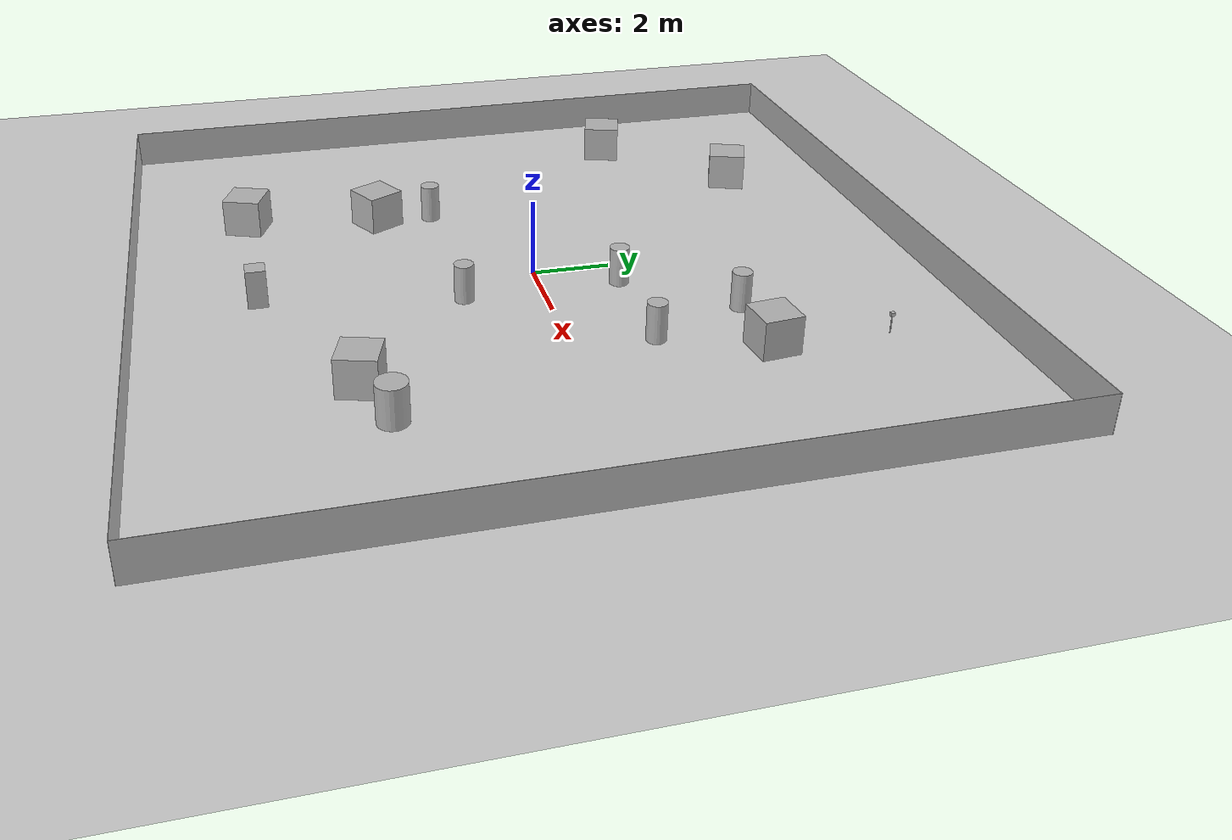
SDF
<sdf version='1.10'>
  <world name='default'>
    <physics type='ode'>
      <max_step_size>0.004</max_step_size>
      <real_time_factor>1.0</real_time_factor>
      <real_time_update_rate>250</real_time_update_rate>
    </physics>
    <plugin name='gz::sim::systems::Physics' filename='gz-sim-physics-system'/>
    <plugin name='gz::sim::systems::UserCommands' filename='gz-sim-user-commands-system'>
      <set_all_light_entities>true</set_all_light_entities>
    </plugin>
    <plugin name='gz::sim::systems::SceneBroadcaster' filename='gz-sim-scene-broadcaster-system'/>
    <plugin name='gz::sim::systems::Contact' filename='gz-sim-contact-system'/>
    <plugin name='gz::sim::systems::Imu' filename='gz-sim-imu-system'/>
    <plugin name='gz::sim::systems::Magnetometer' filename='gz-sim-magnetometer-system'/>
    <plugin name='gz::sim::systems::Altimeter' filename='gz-sim-altimeter-system'/>
    <plugin name='gz::sim::systems::NavSat' filename='gz-sim-navsat-system'/>
    <plugin name='gz::sim::systems::Sensors' filename='gz-sim-sensors-system'>
      <render_engine>ogre2</render_engine>
    </plugin>
    <plugin
      filename="gz-sim-logical-camera-system"
      name="gz::sim::systems::LogicalCamera">
      <render_engine>ogre2</render_engine>
    </plugin>
    <gui fullscreen='false'>
      <plugin name='3D View' filename='GzScene3D'>
        <gz-gui>
          <title>3D View</title>
          <property type='bool' key='showTitleBar'>0</property>
          <property type='string' key='state'>docked</property>
        </gz-gui>
        <engine>ogre2</engine>
        <scene>scene</scene>
        <ambient_light>0.5984631152222222 0.5984631152222222 0.5984631152222222</ambient_light>
        <background_color>0.8984631152222222 0.8984631152222222 0.8984631152222222</background_color>
        <camera_pose>-6 0 6 0 0.5 0</camera_pose>
      </plugin>
      <plugin name='World control' filename='WorldControl'>
        <gz-gui>
          <title>World control</title>
          <property type='bool' key='showTitleBar'>0</property>
          <property type='bool' key='resizable'>0</property>
          <property type='double' key='height'>72</property>
          <property type='double' key='width'>121</property>
          <property type='double' key='z'>1</property>
          <property type='string' key='state'>floating</property>
          <anchors target='3D View'>
            <line own='left' target='left'/>
            <line own='bottom' target='bottom'/>
          </anchors>
        </gz-gui>
        <play_pause>1</play_pause>
        <step>1</step>
        <start_paused>1</start_paused>
      </plugin>
      <plugin name='World stats' filename='WorldStats'>
        <gz-gui>
          <title>World stats</title>
          <property type='bool' key='showTitleBar'>0</property>
          <property type='bool' key='resizable'>0</property>
          <property type='double' key='height'>110</property>
          <property type='double' key='width'>290</property>
          <property type='double' key='z'>1</property>
          <property type='string' key='state'>floating</property>
          <anchors target='3D View'>
            <line own='right' target='right'/>
            <line own='bottom' target='bottom'/>
          </anchors>
        </gz-gui>
        <sim_time>1</sim_time>
        <real_time>1</real_time>
        <real_time_factor>1</real_time_factor>
        <iterations>1</iterations>
      </plugin>
    </gui>
    <gravity>0 0 -9.8000000000000007</gravity>
    <magnetic_field>6.0000000000000002e-06 2.3e-05 -4.1999999999999998e-05</magnetic_field>
    <atmosphere type='adiabatic'/>
    <spherical_coordinates>
      <surface_model>EARTH_WGS84</surface_model>
      <latitude_deg>39.79480109851339</latitude_deg>
      <longitude_deg>-84.08631702793322</longitude_deg>
      <elevation>265.2</elevation>
      <heading_deg>0</heading_deg>
    </spherical_coordinates>
    <scene>
      <grid>true</grid>
      <ambient>0.400000006 0.400000006 0.400000006 1</ambient>
      <background>0.699999988 0.699999988 0.699999988 1</background>
      <shadows>false</shadows>
    </scene>
    <model name='ground_plane'>
      <static>true</static>
      <link name='link'>
        <collision name='collision'>
          <geometry>
            <plane>
              <normal>0 0 1</normal>
              <size>1 1</size>
            </plane>
          </geometry>
          <surface>
            <friction>
              <ode/>
            </friction>
            <bounce/>
            <contact/>
          </surface>
        </collision>
        <visual name='visual'>
          <geometry>
            <plane>
              <normal>0 0 1</normal>
              <size>100 100</size>
            </plane>
          </geometry>
          <material>
            <ambient>0.800000012 0.800000012 0.800000012 1</ambient>
            <diffuse>0.800000012 0.800000012 0.800000012 1</diffuse>
            <specular>0.800000012 0.800000012 0.800000012 1</specular>
          </material>
        </visual>
        <pose>0 0 0 0 0 0</pose>
        <inertial>
          <pose>0 0 0 0 0 0</pose>
          <mass>1</mass>
          <inertia>
            <ixx>1</ixx>
            <ixy>0</ixy>
            <ixz>0</ixz>
            <iyy>1</iyy>
            <iyz>0</iyz>
            <izz>1</izz>
          </inertia>
        </inertial>
        <enable_wind>false</enable_wind>
      </link>
      <pose>0 0 0 0 0 0</pose>
      <self_collide>false</self_collide>
    </model>
    <model name='wall_1'>
      <pose>-10 0 .5 0 0 -1.57</pose>
      <static>true</static>
      <link name='link'>
        <collision name='collision'>
          <geometry>
            <box>
              <size>20 .01 1</size>
            </box>
          </geometry>
        </collision>
        <visual name='visual'>
          <geometry>
            <box>
              <size>20 .01 1</size>
            </box>
          </geometry>
          <material>
            <ambient>0.7 0.7 0.7 1</ambient>
            <diffuse>0.7 0.7 0.7 1</diffuse>
            <specular>0.7 0.7 0.7 1</specular>
          </material>
        </visual>
        <inertial>
          <pose>0 0 0 0 0 0</pose>
          <mass>1</mass>
          <inertia>
            <ixx>1</ixx>
            <ixy>0</ixy>
            <ixz>0</ixz>
            <iyy>1</iyy>
            <iyz>0</iyz>
            <izz>1</izz>
          </inertia>
        </inertial>
        <enable_wind>false</enable_wind>
      </link>
      <self_collide>false</self_collide>
    </model>
    <model name='wall_2'>
      <pose>10 0 .5 0 0 -1.57</pose>
      <static>true</static>
      <link name='link'>
        <collision name='collision'>
          <geometry>
            <box>
              <size>20 .01 1</size>
            </box>
          </geometry>
        </collision>
        <visual name='visual'>
          <geometry>
            <box>
              <size>20 .01 1</size>
            </box>
          </geometry>
          <material>
            <ambient>0.7 0.7 0.7 1</ambient>
            <diffuse>0.7 0.7 0.7 1</diffuse>
            <specular>0.7 0.7 0.7 1</specular>
          </material>
        </visual>
        <inertial>
          <pose>0 0 0 0 0 0</pose>
          <mass>1</mass>
          <inertia>
            <ixx>1</ixx>
            <ixy>0</ixy>
            <ixz>0</ixz>
            <iyy>1</iyy>
            <iyz>0</iyz>
            <izz>1</izz>
          </inertia>
        </inertial>
        <enable_wind>false</enable_wind>
      </link>
      <self_collide>false</self_collide>
    </model>
    <model name='wall_3'>
      <pose>0 10 .5 0 0 0</pose>
      <static>true</static>
      <link name='link'>
        <collision name='collision'>
          <geometry>
            <box>
              <size>20 .01 1</size>
            </box>
          </geometry>
        </collision>
        <visual name='visual'>
          <geometry>
            <box>
              <size>20 .01 1</size>
            </box>
          </geometry>
          <material>
            <ambient>0.7 0.7 0.7 1</ambient>
            <diffuse>0.7 0.7 0.7 1</diffuse>
            <specular>0.7 0.7 0.7 1</specular>
          </material>
        </visual>
        <inertial>
          <pose>0 0 0 0 0 0</pose>
          <mass>1</mass>
          <inertia>
            <ixx>1</ixx>
            <ixy>0</ixy>
            <ixz>0</ixz>
            <iyy>1</iyy>
            <iyz>0</iyz>
            <izz>1</izz>
          </inertia>
        </inertial>
        <enable_wind>false</enable_wind>
      </link>
      <self_collide>false</self_collide>
    </model>
    <model name='wall_4'>
      <pose>0 -10 .5 0 0 0</pose>
      <static>true</static>
      <link name='link'>
        <collision name='collision'>
          <geometry>
            <box>
              <size>20 .01 1</size>
            </box>
          </geometry>
        </collision>
        <visual name='visual'>
          <geometry>
            <box>
              <size>20 .01 1</size>
            </box>
          </geometry>
          <material>
            <ambient>0.7 0.7 0.7 1</ambient>
            <diffuse>0.7 0.7 0.7 1</diffuse>
            <specular>0.7 0.7 0.7 1</specular>
          </material>
        </visual>
        <inertial>
          <pose>0 0 0 0 0 0</pose>
          <mass>1</mass>
          <inertia>
            <ixx>1</ixx>
            <ixy>0</ixy>
            <ixz>0</ixz>
            <iyy>1</iyy>
            <iyz>0</iyz>
            <izz>1</izz>
          </inertia>
        </inertial>
        <enable_wind>false</enable_wind>
      </link>
      <self_collide>false</self_collide>
    </model>
    <model name='cube_1'>
      <pose>-4 -3.5 .5 0 0 .5</pose>
      <static>true</static>
      <link name='link'>
        <collision name='collision'>
          <geometry>
            <box>
              <size>1 1 1</size>
            </box>
          </geometry>
        </collision>
        <visual name='visual'>
          <geometry>
            <box>
              <size>1 1 1</size>
            </box>
          </geometry>
          <material>
            <ambient>0.7 0.7 0.7 1</ambient>
            <diffuse>0.7 0.7 0.7 1</diffuse>
            <specular>0.7 0.7 0.7 1</specular>
          </material>
        </visual>
        <inertial>
          <pose>0 0 0 0 0 0</pose>
          <mass>1</mass>
          <inertia>
            <ixx>1</ixx>
            <ixy>0</ixy>
            <ixz>0</ixz>
            <iyy>1</iyy>
            <iyz>0</iyz>
            <izz>1</izz>
          </inertia>
        </inertial>
        <enable_wind>false</enable_wind>
      </link>
      <self_collide>false</self_collide>
    </model>
    <model name='cube_2'>
      <pose>0 -7 .5 0 0 0</pose>
      <static>true</static>
      <link name='link'>
        <collision name='collision'>
          <geometry>
            <box>
              <size>.5 .5 1</size>
            </box>
          </geometry>
        </collision>
        <visual name='visual'>
          <geometry>
            <box>
              <size>.5 .5 1</size>
            </box>
          </geometry>
          <material>
            <ambient>0.7 0.7 0.7 1</ambient>
            <diffuse>0.7 0.7 0.7 1</diffuse>
            <specular>0.7 0.7 0.7 1</specular>
          </material>
        </visual>
        <inertial>
          <pose>0 0 0 0 0 0</pose>
          <mass>1</mass>
          <inertia>
            <ixx>1</ixx>
            <ixy>0</ixy>
            <ixz>0</ixz>
            <iyy>1</iyy>
            <iyz>0</iyz>
            <izz>1</izz>
          </inertia>
        </inertial>
        <enable_wind>false</enable_wind>
      </link>
      <self_collide>false</self_collide>
    </model>
    <model name='cube_3'>
      <pose>5 4.5 .5 0 0 .1</pose>
      <static>true</static>
      <link name='link'>
        <collision name='collision'>
          <geometry>
            <box>
              <size>1 1 1</size>
            </box>
          </geometry>
        </collision>
        <visual name='visual'>
          <geometry>
            <box>
              <size>1 1 1</size>
            </box>
          </geometry>
          <material>
            <ambient>0.7 0.7 0.7 1</ambient>
            <diffuse>0.7 0.7 0.7 1</diffuse>
            <specular>0.7 0.7 0.7 1</specular>
          </material>
        </visual>
        <inertial>
          <pose>0 0 0 0 0 0</pose>
          <mass>1</mass>
          <inertia>
            <ixx>1</ixx>
            <ixy>0</ixy>
            <ixz>0</ixz>
            <iyy>1</iyy>
            <iyz>0</iyz>
            <izz>1</izz>
          </inertia>
        </inertial>
        <enable_wind>false</enable_wind>
      </link>
      <self_collide>false</self_collide>
    </model>

    <model name='cube_4'>
      <pose>4.5 -5.0 .5 0 0 -0.3</pose>
      <static>true</static>
      <link name='link'>
        <collision name='collision'>
          <geometry>
            <box>
              <size>1 1 1</size>
            </box>
          </geometry>
        </collision>
        <visual name='visual'>
          <geometry>
            <box>
              <size>1 1 1</size>
            </box>
          </geometry>
          <material>
            <ambient>0.7 0.7 0.7 1</ambient>
            <diffuse>0.7 0.7 0.7 1</diffuse>
            <specular>0.7 0.7 0.7 1</specular>
          </material>
        </visual>
        <inertial>
          <pose>0 0 0 0 0 0</pose>
          <mass>1</mass>
          <inertia>
            <ixx>1</ixx>
            <ixy>0</ixy>
            <ixz>0</ixz>
            <iyy>1</iyy>
            <iyz>0</iyz>
            <izz>1</izz>
          </inertia>
        </inertial>
        <enable_wind>false</enable_wind>
      </link>
      <self_collide>false</self_collide>
    </model>

    <model name='cube_5'>
      <pose>-7.5 4.0 .5 0 0 -0.3</pose>
      <static>true</static>
      <link name='link'>
        <collision name='collision'>
          <geometry>
            <box>
              <size>1 1 1</size>
            </box>
          </geometry>
        </collision>
        <visual name='visual'>
          <geometry>
            <box>
              <size>1 1 1</size>
            </box>
          </geometry>
          <material>
            <ambient>0.7 0.7 0.7 1</ambient>
            <diffuse>0.7 0.7 0.7 1</diffuse>
            <specular>0.7 0.7 0.7 1</specular>
          </material>
        </visual>
        <inertial>
          <pose>0 0 0 0 0 0</pose>
          <mass>1</mass>
          <inertia>
            <ixx>1</ixx>
            <ixy>0</ixy>
            <ixz>0</ixz>
            <iyy>1</iyy>
            <iyz>0</iyz>
            <izz>1</izz>
          </inertia>
        </inertial>
        <enable_wind>false</enable_wind>
      </link>
      <self_collide>false</self_collide>
    </model>

    <model name='cube_6'>
      <pose>-4.5 7.0 .5 0 0 1.2</pose>
      <static>true</static>
      <link name='link'>
        <collision name='collision'>
          <geometry>
            <box>
              <size>1 1 1</size>
            </box>
          </geometry>
        </collision>
        <visual name='visual'>
          <geometry>
            <box>
              <size>1 1 1</size>
            </box>
          </geometry>
          <material>
            <ambient>0.7 0.7 0.7 1</ambient>
            <diffuse>0.7 0.7 0.7 1</diffuse>
            <specular>0.7 0.7 0.7 1</specular>
          </material>
        </visual>
        <inertial>
          <pose>0 0 0 0 0 0</pose>
          <mass>1</mass>
          <inertia>
            <ixx>1</ixx>
            <ixy>0</ixy>
            <ixz>0</ixz>
            <iyy>1</iyy>
            <iyz>0</iyz>
            <izz>1</izz>
          </inertia>
        </inertial>
        <enable_wind>false</enable_wind>
      </link>
      <self_collide>false</self_collide>
    </model>

    <model name='cube_7'>
      <pose>-4.5 -7.0 .5 0 0 1.2</pose>
      <static>true</static>
      <link name='link'>
        <collision name='collision'>
          <geometry>
            <box>
              <size>1 1 1</size>
            </box>
          </geometry>
        </collision>
        <visual name='visual'>
          <geometry>
            <box>
              <size>1 1 1</size>
            </box>
          </geometry>
          <material>
            <ambient>0.7 0.7 0.7 1</ambient>
            <diffuse>0.7 0.7 0.7 1</diffuse>
            <specular>0.7 0.7 0.7 1</specular>
          </material>
        </visual>
        <inertial>
          <pose>0 0 0 0 0 0</pose>
          <mass>1</mass>
          <inertia>
            <ixx>1</ixx>
            <ixy>0</ixy>
            <ixz>0</ixz>
            <iyy>1</iyy>
            <iyz>0</iyz>
            <izz>1</izz>
          </inertia>
        </inertial>
        <enable_wind>false</enable_wind>
      </link>
      <self_collide>false</self_collide>
    </model>

    <model name='cylinder_1'>
      <pose>6 -4.5 .5 0 0 0</pose>
      <static>true</static>
      <link name='link'>
        <collision name='collision'>
          <geometry>
            <cylinder>
              <length>1</length>
              <radius>.375</radius>
            </cylinder>
          </geometry>
        </collision>
        <visual name='visual'>
          <geometry>
            <cylinder>
              <length>1</length>
              <radius>.375</radius>
            </cylinder>
          </geometry>
          <material>
            <ambient>0.7 0.7 0.7 1</ambient>
            <diffuse>0.7 0.7 0.7 1</diffuse>
            <specular>0.7 0.7 0.7 1</specular>
          </material>
        </visual>
        <inertial>
          <pose>0 0 0 0 0 0</pose>
          <mass>1</mass>
          <inertia>
            <ixx>1</ixx>
            <ixy>0</ixy>
            <ixz>0</ixz>
            <iyy>1</iyy>
            <iyz>0</iyz>
            <izz>1</izz>
          </inertia>
        </inertial>
        <enable_wind>false</enable_wind>
      </link>
      <self_collide>false</self_collide>
    </model>
    <model name='cylinder_2'>
      <pose>3 4.5 .5 0 0 0</pose>
      <static>true</static>
      <link name='link'>
        <collision name='collision'>
          <geometry>
            <cylinder>
              <length>1</length>
              <radius>.25</radius>
            </cylinder>
          </geometry>
        </collision>
        <visual name='visual'>
          <geometry>
            <cylinder>
              <length>1</length>
              <radius>.25</radius>
            </cylinder>
          </geometry>
          <material>
            <ambient>0.7 0.7 0.7 1</ambient>
            <diffuse>0.7 0.7 0.7 1</diffuse>
            <specular>0.7 0.7 0.7 1</specular>
          </material>
        </visual>
        <inertial>
          <pose>0 0 0 0 0 0</pose>
          <mass>1</mass>
          <inertia>
            <ixx>1</ixx>
            <ixy>0</ixy>
            <ixz>0</ixz>
            <iyy>1</iyy>
            <iyz>0</iyz>
            <izz>1</izz>
          </inertia>
        </inertial>
        <enable_wind>false</enable_wind>
      </link>
      <self_collide>false</self_collide>
    </model>
    <model name='cylinder_3'>
      <pose>1.0 2.0 .5 0 0 0</pose>
      <static>true</static>
      <link name='link'>
        <collision name='collision'>
          <geometry>
            <cylinder>
              <length>1</length>
              <radius>.25</radius>
            </cylinder>
          </geometry>
        </collision>
        <visual name='visual'>
          <geometry>
            <cylinder>
              <length>1</length>
              <radius>.25</radius>
            </cylinder>
          </geometry>
          <material>
            <ambient>0.7 0.7 0.7 1</ambient>
            <diffuse>0.7 0.7 0.7 1</diffuse>
            <specular>0.7 0.7 0.7 1</specular>
          </material>
        </visual>
        <inertial>
          <pose>0 0 0 0 0 0</pose>
          <mass>1</mass>
          <inertia>
            <ixx>1</ixx>
            <ixy>0</ixy>
            <ixz>0</ixz>
            <iyy>1</iyy>
            <iyz>0</iyz>
            <izz>1</izz>
          </inertia>
        </inertial>
        <enable_wind>false</enable_wind>
      </link>
      <self_collide>false</self_collide>
    </model>
    <model name='cylinder_4'>
      <pose>1.0 -2.0 .5 0 0 0</pose>
      <static>true</static>
      <link name='link'>
        <collision name='collision'>
          <geometry>
            <cylinder>
              <length>1</length>
              <radius>.25</radius>
            </cylinder>
          </geometry>
        </collision>
        <visual name='visual'>
          <geometry>
            <cylinder>
              <length>1</length>
              <radius>.25</radius>
            </cylinder>
          </geometry>
          <material>
            <ambient>0.7 0.7 0.7 1</ambient>
            <diffuse>0.7 0.7 0.7 1</diffuse>
            <specular>0.7 0.7 0.7 1</specular>
          </material>
        </visual>
        <inertial>
          <pose>0 0 0 0 0 0</pose>
          <mass>1</mass>
          <inertia>
            <ixx>1</ixx>
            <ixy>0</ixy>
            <ixz>0</ixz>
            <iyy>1</iyy>
            <iyz>0</iyz>
            <izz>1</izz>
          </inertia>
        </inertial>
        <enable_wind>false</enable_wind>
      </link>
      <self_collide>false</self_collide>
    </model>
    <model name='cylinder_5'>
      <pose>-4.0 -2.0 .5 0 0 0</pose>
      <static>true</static>
      <link name='link'>
        <collision name='collision'>
          <geometry>
            <cylinder>
              <length>1</length>
              <radius>.25</radius>
            </cylinder>
          </geometry>
        </collision>
        <visual name='visual'>
          <geometry>
            <cylinder>
              <length>1</length>
              <radius>.25</radius>
            </cylinder>
          </geometry>
          <material>
            <ambient>0.7 0.7 0.7 1</ambient>
            <diffuse>0.7 0.7 0.7 1</diffuse>
            <specular>0.7 0.7 0.7 1</specular>
          </material>
        </visual>
        <inertial>
          <pose>0 0 0 0 0 0</pose>
          <mass>1</mass>
          <inertia>
            <ixx>1</ixx>
            <ixy>0</ixy>
            <ixz>0</ixz>
            <iyy>1</iyy>
            <iyz>0</iyz>
            <izz>1</izz>
          </inertia>
        </inertial>
        <enable_wind>false</enable_wind>
      </link>
      <self_collide>false</self_collide>
    </model>
    <model name='cylinder_6'>
      <pose>4.0 2.0 .5 0 0 0</pose>
      <static>true</static>
      <link name='link'>
        <collision name='collision'>
          <geometry>
            <cylinder>
              <length>1</length>
              <radius>.25</radius>
            </cylinder>
          </geometry>
        </collision>
        <visual name='visual'>
          <geometry>
            <cylinder>
              <length>1</length>
              <radius>.25</radius>
            </cylinder>
          </geometry>
          <material>
            <ambient>0.7 0.7 0.7 1</ambient>
            <diffuse>0.7 0.7 0.7 1</diffuse>
            <specular>0.7 0.7 0.7 1</specular>
          </material>
        </visual>
        <inertial>
          <pose>0 0 0 0 0 0</pose>
          <mass>1</mass>
          <inertia>
            <ixx>1</ixx>
            <ixy>0</ixy>
            <ixz>0</ixz>
            <iyy>1</iyy>
            <iyz>0</iyz>
            <izz>1</izz>
          </inertia>
        </inertial>
        <enable_wind>false</enable_wind>
      </link>
      <self_collide>false</self_collide>
    </model>
    <light name='sunUTC' type='directional'>
      <pose>0 0 500 0 0 0</pose>
      <cast_shadows>false</cast_shadows>
      <intensity>1</intensity>
      <direction>0.001 0.625 -0.78000000000000003</direction>
      <diffuse>0.903999984 0.903999984 0.903999984 1</diffuse>
      <specular>0.270999998 0.270999998 0.270999998 1</specular>
      <attenuation>
        <range>2000</range>
        <linear>0</linear>
        <constant>1</constant>
        <quadratic>0</quadratic>
      </attenuation>
      <spot>
        <inner_angle>0</inner_angle>
        <outer_angle>0</outer_angle>
        <falloff>0</falloff>
      </spot>
    </light>

    <model name="logical_camera">
      <static>true</static>
      <pose>5 7.5 .5 0 0 -1.57 </pose>
      <link name="logical_camera_link">
        <visual name="visual_box">
          <geometry>
            <box>
              <size>0.1 0.1 0.1</size>
            </box>
          </geometry>
        </visual>
        <sensor name='uwb_source' type='logical_camera'>"
          <update_rate>10</update_rate>
          <logical_camera>
            <near>0.55</near>
            <far>4</far>
            <horizontal_fov>2</horizontal_fov>
            <aspect_ratio>1.0</aspect_ratio>
          </logical_camera>
          <alwaysOn>1</alwaysOn>
          <visualize>true</visualize>
          <topic>uwb_twr_source</topic>
        </sensor>
      </link>
    </model>
    <model name="pole">
      <static>true</static>
      <pose>5 7.5 0 0 0 0 </pose>
      <link name="pole_link">
        <visual name="visual_pole">
          <pose>0 0 .25 0 0 0.0</pose>
          <geometry>
            <cylinder>
              <radius>.015</radius>
              <length>.5</length>
            </cylinder>
          </geometry>
        </visual>
      </link>
    </model>

  </world>
</sdf>
